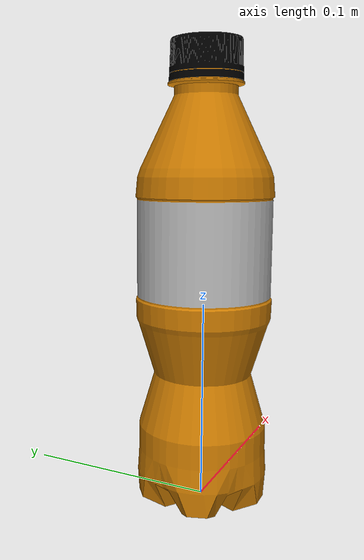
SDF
<?xml version='1.0'?>
<sdf version='1.4'>
  <model name="juice_bottle">
    <pose>0 0 0  0 0 0</pose>
    <static>true</static>
    <link name="body">
      <visual name="visual">
        <geometry>
          <mesh>
            <uri>model://juice/juice.dae</uri>
            <scale>0.1 0.1 0.1</scale>
          </mesh>
        </geometry>
      </visual>
    </link>
  </model>
</sdf>
